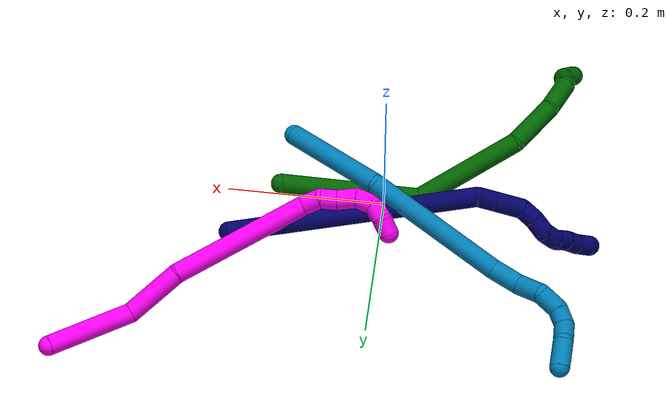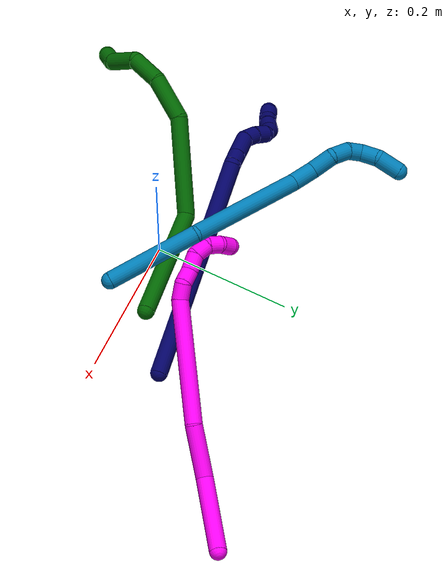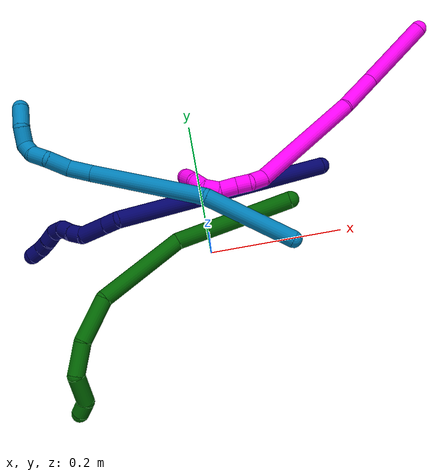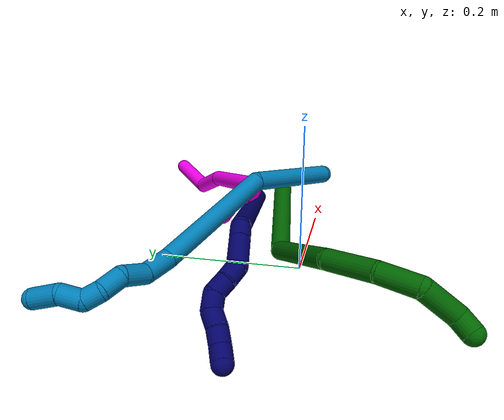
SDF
<sdf version="1.7">
 <world name="default">
  <model name="6">
   <static>0</static>
   <link name="6">
    <collision name="collision-cylinder-e_1_1_4">
     <pose>-0.010092 0.006536 0.087473 -0.074585 -0.114547 0.004278</pose>
     <geometry><cylinder><radius>0.0125</radius><length>0.176591</length></cylinder></geometry>
     <surface>
      <friction><ode><mu>1.16</mu><mu2>1.16</mu2><slip1>0</slip1><slip2>0</slip2></ode></friction>
      <contact><ode><kp>1e+06</kp><kd>1</kd><max_vel>0</max_vel><min_depth>0.001</min_depth></ode></contact>
     </surface>
    </collision>
    <visual name="visual-cylinder-e_1_1_4">
     <pose>-0.010092 0.006536 0.087473 -0.074585 -0.114547 0.004278</pose>
     <geometry><cylinder><radius>0.0125</radius><length>0.176591</length></cylinder></geometry>
     <material><ambient>0 0.392157 0.003922 1</ambient></material>
    </visual>
    <collision name="collision-cylinder-e_2_4_5">
     <pose>-0.036399 -0.024397 0.232658 0.575851 -0.231438 -0.068822</pose>
     <geometry><cylinder><radius>0.0125</radius><length>0.141388</length></cylinder></geometry>
     <surface>
      <friction><ode><mu>1.16</mu><mu2>1.16</mu2><slip1>0</slip1><slip2>0</slip2></ode></friction>
      <contact><ode><kp>1e+06</kp><kd>1</kd><max_vel>0</max_vel><min_depth>0.001</min_depth></ode></contact>
     </surface>
    </collision>
    <visual name="visual-cylinder-e_2_4_5">
     <pose>-0.036399 -0.024397 0.232658 0.575851 -0.231438 -0.068822</pose>
     <geometry><cylinder><radius>0.0125</radius><length>0.141388</length></cylinder></geometry>
     <material><ambient>0 0.392157 0.003922 1</ambient></material>
    </visual>
    <collision name="collision-cylinder-e_3_5_6">
     <pose>-0.073715 -0.077632 0.310485 0.664727 -0.690163 -0.24689</pose>
     <geometry><cylinder><radius>0.0125</radius><length>0.066284</length></cylinder></geometry>
     <surface>
      <friction><ode><mu>1.16</mu><mu2>1.16</mu2><slip1>0</slip1><slip2>0</slip2></ode></friction>
      <contact><ode><kp>1e+06</kp><kd>1</kd><max_vel>0</max_vel><min_depth>0.001</min_depth></ode></contact>
     </surface>
    </collision>
    <visual name="visual-cylinder-e_3_5_6">
     <pose>-0.073715 -0.077632 0.310485 0.664727 -0.690163 -0.24689</pose>
     <geometry><cylinder><radius>0.0125</radius><length>0.066284</length></cylinder></geometry>
     <material><ambient>0 0.392157 0.003922 1</ambient></material>
    </visual>
    <collision name="collision-cylinder-e_4_6_7">
     <pose>-0.114651 -0.100911 0.34056 0.646382 -1.00938 -0.365901</pose>
     <geometry><cylinder><radius>0.0125</radius><length>0.046865</length></cylinder></geometry>
     <surface>
      <friction><ode><mu>1.16</mu><mu2>1.16</mu2><slip1>0</slip1><slip2>0</slip2></ode></friction>
      <contact><ode><kp>1e+06</kp><kd>1</kd><max_vel>0</max_vel><min_depth>0.001</min_depth></ode></contact>
     </surface>
    </collision>
    <visual name="visual-cylinder-e_4_6_7">
     <pose>-0.114651 -0.100911 0.34056 0.646382 -1.00938 -0.365901</pose>
     <geometry><cylinder><radius>0.0125</radius><length>0.046865</length></cylinder></geometry>
     <material><ambient>0 0.392157 0.003922 1</ambient></material>
    </visual>
    <collision name="collision-cylinder-e_5_7_8">
     <pose>-0.157343 -0.103111 0.351178 -1.44728 -1.34071 1.22211</pose>
     <geometry><cylinder><radius>0.0125</radius><length>0.046951</length></cylinder></geometry>
     <surface>
      <friction><ode><mu>1.16</mu><mu2>1.16</mu2><slip1>0</slip1><slip2>0</slip2></ode></friction>
      <contact><ode><kp>1e+06</kp><kd>1</kd><max_vel>0</max_vel><min_depth>0.001</min_depth></ode></contact>
     </surface>
    </collision>
    <visual name="visual-cylinder-e_5_7_8">
     <pose>-0.157343 -0.103111 0.351178 -1.44728 -1.34071 1.22211</pose>
     <geometry><cylinder><radius>0.0125</radius><length>0.046951</length></cylinder></geometry>
     <material><ambient>0 0.392157 0.003922 1</ambient></material>
    </visual>
    <collision name="collision-cylinder-e_6_8_2">
     <pose>-0.188564 -0.095983 0.358685 -0.259077 -0.868057 0.120614</pose>
     <geometry><cylinder><radius>0.0125</radius><length>0.021922</length></cylinder></geometry>
     <surface>
      <friction><ode><mu>1.16</mu><mu2>1.16</mu2><slip1>0</slip1><slip2>0</slip2></ode></friction>
      <contact><ode><kp>1e+06</kp><kd>1</kd><max_vel>0</max_vel><min_depth>0.001</min_depth></ode></contact>
     </surface>
    </collision>
    <visual name="visual-cylinder-e_6_8_2">
     <pose>-0.188564 -0.095983 0.358685 -0.259077 -0.868057 0.120614</pose>
     <geometry><cylinder><radius>0.0125</radius><length>0.021922</length></cylinder></geometry>
     <material><ambient>0 0.392157 0.003922 1</ambient></material>
    </visual>
    <collision name="collision-sphere-2">
     <pose>-0.196928 -0.094168 0.365533 0 -0 0</pose>
     <geometry><sphere><radius>0.0125</radius></sphere></geometry>
     <surface>
      <friction><ode><mu>1.16</mu><mu2>1.16</mu2><slip1>0</slip1><slip2>0</slip2></ode></friction>
      <contact><ode><kp>1e+06</kp><kd>1</kd><max_vel>0</max_vel><min_depth>0.001</min_depth></ode></contact>
     </surface>
    </collision>
    <visual name="visual-sphere-2">
     <pose>-0.196928 -0.094168 0.365533 0 -0 0</pose>
     <geometry><sphere><radius>0.0125</radius></sphere></geometry>
     <material><ambient>0 0.392157 0.003922 1</ambient></material>
    </visual>
    <collision name="collision-sphere-4">
     <pose>-0.020184 0.013073 0.174946 0 -0 0</pose>
     <geometry><sphere><radius>0.0125</radius></sphere></geometry>
     <surface>
      <friction><ode><mu>1.16</mu><mu2>1.16</mu2><slip1>0</slip1><slip2>0</slip2></ode></friction>
      <contact><ode><kp>1e+06</kp><kd>1</kd><max_vel>0</max_vel><min_depth>0.001</min_depth></ode></contact>
     </surface>
    </collision>
    <visual name="visual-sphere-4">
     <pose>-0.020184 0.013073 0.174946 0 -0 0</pose>
     <geometry><sphere><radius>0.0125</radius></sphere></geometry>
     <material><ambient>0 0.392157 0.003922 1</ambient></material>
    </visual>
    <collision name="collision-sphere-1">
     <geometry><sphere><radius>0.0125</radius></sphere></geometry>
     <surface>
      <friction><ode><mu>1.16</mu><mu2>1.16</mu2><slip1>0</slip1><slip2>0</slip2></ode></friction>
      <contact><ode><kp>1e+06</kp><kd>1</kd><max_vel>0</max_vel><min_depth>0.001</min_depth></ode></contact>
     </surface>
    </collision>
    <visual name="visual-sphere-1">
     <geometry><sphere><radius>0.0125</radius></sphere></geometry>
     <material><ambient>0 0.392157 0.003922 1</ambient></material>
    </visual>
    <collision name="collision-sphere-8">
     <pose>-0.1802 -0.097798 0.351837 0 -0 0</pose>
     <geometry><sphere><radius>0.0125</radius></sphere></geometry>
     <surface>
      <friction><ode><mu>1.16</mu><mu2>1.16</mu2><slip1>0</slip1><slip2>0</slip2></ode></friction>
      <contact><ode><kp>1e+06</kp><kd>1</kd><max_vel>0</max_vel><min_depth>0.001</min_depth></ode></contact>
     </surface>
    </collision>
    <visual name="visual-sphere-8">
     <pose>-0.1802 -0.097798 0.351837 0 -0 0</pose>
     <geometry><sphere><radius>0.0125</radius></sphere></geometry>
     <material><ambient>0 0.392157 0.003922 1</ambient></material>
    </visual>
    <collision name="collision-sphere-5">
     <pose>-0.052615 -0.061867 0.29037 0 -0 0</pose>
     <geometry><sphere><radius>0.0125</radius></sphere></geometry>
     <surface>
      <friction><ode><mu>1.16</mu><mu2>1.16</mu2><slip1>0</slip1><slip2>0</slip2></ode></friction>
      <contact><ode><kp>1e+06</kp><kd>1</kd><max_vel>0</max_vel><min_depth>0.001</min_depth></ode></contact>
     </surface>
    </collision>
    <visual name="visual-sphere-5">
     <pose>-0.052615 -0.061867 0.29037 0 -0 0</pose>
     <geometry><sphere><radius>0.0125</radius></sphere></geometry>
     <material><ambient>0 0.392157 0.003922 1</ambient></material>
    </visual>
    <collision name="collision-sphere-6">
     <pose>-0.094816 -0.093397 0.330601 0 -0 0</pose>
     <geometry><sphere><radius>0.0125</radius></sphere></geometry>
     <surface>
      <friction><ode><mu>1.16</mu><mu2>1.16</mu2><slip1>0</slip1><slip2>0</slip2></ode></friction>
      <contact><ode><kp>1e+06</kp><kd>1</kd><max_vel>0</max_vel><min_depth>0.001</min_depth></ode></contact>
     </surface>
    </collision>
    <visual name="visual-sphere-6">
     <pose>-0.094816 -0.093397 0.330601 0 -0 0</pose>
     <geometry><sphere><radius>0.0125</radius></sphere></geometry>
     <material><ambient>0 0.392157 0.003922 1</ambient></material>
    </visual>
    <collision name="collision-sphere-7">
     <pose>-0.134487 -0.108424 0.350518 0 -0 0</pose>
     <geometry><sphere><radius>0.0125</radius></sphere></geometry>
     <surface>
      <friction><ode><mu>1.16</mu><mu2>1.16</mu2><slip1>0</slip1><slip2>0</slip2></ode></friction>
      <contact><ode><kp>1e+06</kp><kd>1</kd><max_vel>0</max_vel><min_depth>0.001</min_depth></ode></contact>
     </surface>
    </collision>
    <visual name="visual-sphere-7">
     <pose>-0.134487 -0.108424 0.350518 0 -0 0</pose>
     <geometry><sphere><radius>0.0125</radius></sphere></geometry>
     <material><ambient>0 0.392157 0.003922 1</ambient></material>
    </visual>
    <inertial>
     <pose>-0.057418 -0.038231 0.218467 0 -0 0</pose>
     <mass>0.5</mass>
     <inertia>
      <ixx>0.00069</ixx>
      <ixy>0</ixy>
      <ixz>0</ixz>
      <iyy>0.000686</iyy>
      <iyz>0</iyz>
      <izz>0.000281</izz>
     </inertia>
    </inertial>
   </link>
   <pose>0.12565 0.045323 0.078914 -1.65555 -0.42918 1.67783</pose>
  </model>
  <model name="7">
   <static>0</static>
   <link name="7">
    <collision name="collision-cylinder-e_1_1_4">
     <pose>-0.088791 -0.063098 -0.11539 2.64119 -0.593845 -1.74987</pose>
     <geometry><cylinder><radius>0.0125</radius><length>0.317366</length></cylinder></geometry>
     <surface>
      <friction><ode><mu>1.16</mu><mu2>1.16</mu2><slip1>0</slip1><slip2>0</slip2></ode></friction>
      <contact><ode><kp>1e+06</kp><kd>1</kd><max_vel>0</max_vel><min_depth>0.001</min_depth></ode></contact>
     </surface>
    </collision>
    <visual name="visual-cylinder-e_1_1_4">
     <pose>-0.088791 -0.063098 -0.11539 2.64119 -0.593845 -1.74987</pose>
     <geometry><cylinder><radius>0.0125</radius><length>0.317366</length></cylinder></geometry>
     <material><ambient>0.003922 0 0.403922 1</ambient></material>
    </visual>
    <collision name="collision-cylinder-e_2_4_5">
     <pose>-0.181351 -0.12437 -0.240644 -2.95848 -0.359352 2.20556</pose>
     <geometry><cylinder><radius>0.0125</radius><length>0.021431</length></cylinder></geometry>
     <surface>
      <friction><ode><mu>1.16</mu><mu2>1.16</mu2><slip1>0</slip1><slip2>0</slip2></ode></friction>
      <contact><ode><kp>1e+06</kp><kd>1</kd><max_vel>0</max_vel><min_depth>0.001</min_depth></ode></contact>
     </surface>
    </collision>
    <visual name="visual-cylinder-e_2_4_5">
     <pose>-0.181351 -0.12437 -0.240644 -2.95848 -0.359352 2.20556</pose>
     <geometry><cylinder><radius>0.0125</radius><length>0.021431</length></cylinder></geometry>
     <material><ambient>0.003922 0 0.403922 1</ambient></material>
    </visual>
    <collision name="collision-cylinder-e_3_5_6">
     <pose>-0.192231 -0.119092 -0.269009 -2.95717 -0.361284 2.20419</pose>
     <geometry><cylinder><radius>0.0125</radius><length>0.040239</length></cylinder></geometry>
     <surface>
      <friction><ode><mu>1.16</mu><mu2>1.16</mu2><slip1>0</slip1><slip2>0</slip2></ode></friction>
      <contact><ode><kp>1e+06</kp><kd>1</kd><max_vel>0</max_vel><min_depth>0.001</min_depth></ode></contact>
     </surface>
    </collision>
    <visual name="visual-cylinder-e_3_5_6">
     <pose>-0.192231 -0.119092 -0.269009 -2.95717 -0.361284 2.20419</pose>
     <geometry><cylinder><radius>0.0125</radius><length>0.040239</length></cylinder></geometry>
     <material><ambient>0.003922 0 0.403922 1</ambient></material>
    </visual>
    <collision name="collision-cylinder-e_4_6_7">
     <pose>-0.20633 -0.111252 -0.293492 -2.50856 -0.755428 1.7614</pose>
     <geometry><cylinder><radius>0.0125</radius><length>0.020383</length></cylinder></geometry>
     <surface>
      <friction><ode><mu>1.16</mu><mu2>1.16</mu2><slip1>0</slip1><slip2>0</slip2></ode></friction>
      <contact><ode><kp>1e+06</kp><kd>1</kd><max_vel>0</max_vel><min_depth>0.001</min_depth></ode></contact>
     </surface>
    </collision>
    <visual name="visual-cylinder-e_4_6_7">
     <pose>-0.20633 -0.111252 -0.293492 -2.50856 -0.755428 1.7614</pose>
     <geometry><cylinder><radius>0.0125</radius><length>0.020383</length></cylinder></geometry>
     <material><ambient>0.003922 0 0.403922 1</ambient></material>
    </visual>
    <collision name="collision-cylinder-e_5_7_8">
     <pose>-0.220092 -0.100926 -0.304086 -2.23133 -0.733423 1.33082</pose>
     <geometry><cylinder><radius>0.0125</radius><length>0.020241</length></cylinder></geometry>
     <surface>
      <friction><ode><mu>1.16</mu><mu2>1.16</mu2><slip1>0</slip1><slip2>0</slip2></ode></friction>
      <contact><ode><kp>1e+06</kp><kd>1</kd><max_vel>0</max_vel><min_depth>0.001</min_depth></ode></contact>
     </surface>
    </collision>
    <visual name="visual-cylinder-e_5_7_8">
     <pose>-0.220092 -0.100926 -0.304086 -2.23133 -0.733423 1.33082</pose>
     <geometry><cylinder><radius>0.0125</radius><length>0.020241</length></cylinder></geometry>
     <material><ambient>0.003922 0 0.403922 1</ambient></material>
    </visual>
    <collision name="collision-cylinder-e_6_8_9">
     <pose>-0.229367 -0.090093 -0.317095 -2.61373 -0.251842 0.876172</pose>
     <geometry><cylinder><radius>0.0125</radius><length>0.020072</length></cylinder></geometry>
     <surface>
      <friction><ode><mu>1.16</mu><mu2>1.16</mu2><slip1>0</slip1><slip2>0</slip2></ode></friction>
      <contact><ode><kp>1e+06</kp><kd>1</kd><max_vel>0</max_vel><min_depth>0.001</min_depth></ode></contact>
     </surface>
    </collision>
    <visual name="visual-cylinder-e_6_8_9">
     <pose>-0.229367 -0.090093 -0.317095 -2.61373 -0.251842 0.876172</pose>
     <geometry><cylinder><radius>0.0125</radius><length>0.020072</length></cylinder></geometry>
     <material><ambient>0.003922 0 0.403922 1</ambient></material>
    </visual>
    <collision name="collision-cylinder-e_7_9_10">
     <pose>-0.231055 -0.083191 -0.335353 -2.94084 0.080568 -0.761347</pose>
     <geometry><cylinder><radius>0.0125</radius><length>0.020193</length></cylinder></geometry>
     <surface>
      <friction><ode><mu>1.16</mu><mu2>1.16</mu2><slip1>0</slip1><slip2>0</slip2></ode></friction>
      <contact><ode><kp>1e+06</kp><kd>1</kd><max_vel>0</max_vel><min_depth>0.001</min_depth></ode></contact>
     </surface>
    </collision>
    <visual name="visual-cylinder-e_7_9_10">
     <pose>-0.231055 -0.083191 -0.335353 -2.94084 0.080568 -0.761347</pose>
     <geometry><cylinder><radius>0.0125</radius><length>0.020193</length></cylinder></geometry>
     <material><ambient>0.003922 0 0.403922 1</ambient></material>
    </visual>
    <collision name="collision-cylinder-e_8_10_11">
     <pose>-0.23013 -0.077547 -0.354534 -2.76949 0.011303 -0.060034</pose>
     <geometry><cylinder><radius>0.0125</radius><length>0.020009</length></cylinder></geometry>
     <surface>
      <friction><ode><mu>1.16</mu><mu2>1.16</mu2><slip1>0</slip1><slip2>0</slip2></ode></friction>
      <contact><ode><kp>1e+06</kp><kd>1</kd><max_vel>0</max_vel><min_depth>0.001</min_depth></ode></contact>
     </surface>
    </collision>
    <visual name="visual-cylinder-e_8_10_11">
     <pose>-0.23013 -0.077547 -0.354534 -2.76949 0.011303 -0.060034</pose>
     <geometry><cylinder><radius>0.0125</radius><length>0.020009</length></cylinder></geometry>
     <material><ambient>0.003922 0 0.403922 1</ambient></material>
    </visual>
    <collision name="collision-cylinder-e_9_11_2">
     <pose>-0.231616 -0.07245 -0.373651 -2.99365 -0.160095 1.64998</pose>
     <geometry><cylinder><radius>0.0125</radius><length>0.020068</length></cylinder></geometry>
     <surface>
      <friction><ode><mu>1.16</mu><mu2>1.16</mu2><slip1>0</slip1><slip2>0</slip2></ode></friction>
      <contact><ode><kp>1e+06</kp><kd>1</kd><max_vel>0</max_vel><min_depth>0.001</min_depth></ode></contact>
     </surface>
    </collision>
    <visual name="visual-cylinder-e_9_11_2">
     <pose>-0.231616 -0.07245 -0.373651 -2.99365 -0.160095 1.64998</pose>
     <geometry><cylinder><radius>0.0125</radius><length>0.020068</length></cylinder></geometry>
     <material><ambient>0.003922 0 0.403922 1</ambient></material>
    </visual>
    <collision name="collision-sphere-2">
     <pose>-0.233216 -0.07099 -0.383448 0 -0 0</pose>
     <geometry><sphere><radius>0.0125</radius></sphere></geometry>
     <surface>
      <friction><ode><mu>1.16</mu><mu2>1.16</mu2><slip1>0</slip1><slip2>0</slip2></ode></friction>
      <contact><ode><kp>1e+06</kp><kd>1</kd><max_vel>0</max_vel><min_depth>0.001</min_depth></ode></contact>
     </surface>
    </collision>
    <visual name="visual-sphere-2">
     <pose>-0.233216 -0.07099 -0.383448 0 -0 0</pose>
     <geometry><sphere><radius>0.0125</radius></sphere></geometry>
     <material><ambient>0.003922 0 0.403922 1</ambient></material>
    </visual>
    <collision name="collision-sphere-11">
     <pose>-0.230017 -0.07391 -0.363853 0 -0 0</pose>
     <geometry><sphere><radius>0.0125</radius></sphere></geometry>
     <surface>
      <friction><ode><mu>1.16</mu><mu2>1.16</mu2><slip1>0</slip1><slip2>0</slip2></ode></friction>
      <contact><ode><kp>1e+06</kp><kd>1</kd><max_vel>0</max_vel><min_depth>0.001</min_depth></ode></contact>
     </surface>
    </collision>
    <visual name="visual-sphere-11">
     <pose>-0.230017 -0.07391 -0.363853 0 -0 0</pose>
     <geometry><sphere><radius>0.0125</radius></sphere></geometry>
     <material><ambient>0.003922 0 0.403922 1</ambient></material>
    </visual>
    <collision name="collision-sphere-10">
     <pose>-0.230243 -0.081184 -0.345215 0 -0 0</pose>
     <geometry><sphere><radius>0.0125</radius></sphere></geometry>
     <surface>
      <friction><ode><mu>1.16</mu><mu2>1.16</mu2><slip1>0</slip1><slip2>0</slip2></ode></friction>
      <contact><ode><kp>1e+06</kp><kd>1</kd><max_vel>0</max_vel><min_depth>0.001</min_depth></ode></contact>
     </surface>
    </collision>
    <visual name="visual-sphere-10">
     <pose>-0.230243 -0.081184 -0.345215 0 -0 0</pose>
     <geometry><sphere><radius>0.0125</radius></sphere></geometry>
     <material><ambient>0.003922 0 0.403922 1</ambient></material>
    </visual>
    <collision name="collision-sphere-9">
     <pose>-0.231868 -0.085198 -0.325492 0 -0 0</pose>
     <geometry><sphere><radius>0.0125</radius></sphere></geometry>
     <surface>
      <friction><ode><mu>1.16</mu><mu2>1.16</mu2><slip1>0</slip1><slip2>0</slip2></ode></friction>
      <contact><ode><kp>1e+06</kp><kd>1</kd><max_vel>0</max_vel><min_depth>0.001</min_depth></ode></contact>
     </surface>
    </collision>
    <visual name="visual-sphere-9">
     <pose>-0.231868 -0.085198 -0.325492 0 -0 0</pose>
     <geometry><sphere><radius>0.0125</radius></sphere></geometry>
     <material><ambient>0.003922 0 0.403922 1</ambient></material>
    </visual>
    <collision name="collision-sphere-4">
     <pose>-0.177582 -0.126196 -0.230781 0 -0 0</pose>
     <geometry><sphere><radius>0.0125</radius></sphere></geometry>
     <surface>
      <friction><ode><mu>1.16</mu><mu2>1.16</mu2><slip1>0</slip1><slip2>0</slip2></ode></friction>
      <contact><ode><kp>1e+06</kp><kd>1</kd><max_vel>0</max_vel><min_depth>0.001</min_depth></ode></contact>
     </surface>
    </collision>
    <visual name="visual-sphere-4">
     <pose>-0.177582 -0.126196 -0.230781 0 -0 0</pose>
     <geometry><sphere><radius>0.0125</radius></sphere></geometry>
     <material><ambient>0.003922 0 0.403922 1</ambient></material>
    </visual>
    <collision name="collision-sphere-1">
     <geometry><sphere><radius>0.0125</radius></sphere></geometry>
     <surface>
      <friction><ode><mu>1.16</mu><mu2>1.16</mu2><slip1>0</slip1><slip2>0</slip2></ode></friction>
      <contact><ode><kp>1e+06</kp><kd>1</kd><max_vel>0</max_vel><min_depth>0.001</min_depth></ode></contact>
     </surface>
    </collision>
    <visual name="visual-sphere-1">
     <geometry><sphere><radius>0.0125</radius></sphere></geometry>
     <material><ambient>0.003922 0 0.403922 1</ambient></material>
    </visual>
    <collision name="collision-sphere-8">
     <pose>-0.226866 -0.094989 -0.308699 0 -0 0</pose>
     <geometry><sphere><radius>0.0125</radius></sphere></geometry>
     <surface>
      <friction><ode><mu>1.16</mu><mu2>1.16</mu2><slip1>0</slip1><slip2>0</slip2></ode></friction>
      <contact><ode><kp>1e+06</kp><kd>1</kd><max_vel>0</max_vel><min_depth>0.001</min_depth></ode></contact>
     </surface>
    </collision>
    <visual name="visual-sphere-8">
     <pose>-0.226866 -0.094989 -0.308699 0 -0 0</pose>
     <geometry><sphere><radius>0.0125</radius></sphere></geometry>
     <material><ambient>0.003922 0 0.403922 1</ambient></material>
    </visual>
    <collision name="collision-sphere-5">
     <pose>-0.185119 -0.122543 -0.250508 0 -0 0</pose>
     <geometry><sphere><radius>0.0125</radius></sphere></geometry>
     <surface>
      <friction><ode><mu>1.16</mu><mu2>1.16</mu2><slip1>0</slip1><slip2>0</slip2></ode></friction>
      <contact><ode><kp>1e+06</kp><kd>1</kd><max_vel>0</max_vel><min_depth>0.001</min_depth></ode></contact>
     </surface>
    </collision>
    <visual name="visual-sphere-5">
     <pose>-0.185119 -0.122543 -0.250508 0 -0 0</pose>
     <geometry><sphere><radius>0.0125</radius></sphere></geometry>
     <material><ambient>0.003922 0 0.403922 1</ambient></material>
    </visual>
    <collision name="collision-sphere-6">
     <pose>-0.199343 -0.115641 -0.28751 0 -0 0</pose>
     <geometry><sphere><radius>0.0125</radius></sphere></geometry>
     <surface>
      <friction><ode><mu>1.16</mu><mu2>1.16</mu2><slip1>0</slip1><slip2>0</slip2></ode></friction>
      <contact><ode><kp>1e+06</kp><kd>1</kd><max_vel>0</max_vel><min_depth>0.001</min_depth></ode></contact>
     </surface>
    </collision>
    <visual name="visual-sphere-6">
     <pose>-0.199343 -0.115641 -0.28751 0 -0 0</pose>
     <geometry><sphere><radius>0.0125</radius></sphere></geometry>
     <material><ambient>0.003922 0 0.403922 1</ambient></material>
    </visual>
    <collision name="collision-sphere-7">
     <pose>-0.213317 -0.106863 -0.299473 0 -0 0</pose>
     <geometry><sphere><radius>0.0125</radius></sphere></geometry>
     <surface>
      <friction><ode><mu>1.16</mu><mu2>1.16</mu2><slip1>0</slip1><slip2>0</slip2></ode></friction>
      <contact><ode><kp>1e+06</kp><kd>1</kd><max_vel>0</max_vel><min_depth>0.001</min_depth></ode></contact>
     </surface>
    </collision>
    <visual name="visual-sphere-7">
     <pose>-0.213317 -0.106863 -0.299473 0 -0 0</pose>
     <geometry><sphere><radius>0.0125</radius></sphere></geometry>
     <material><ambient>0.003922 0 0.403922 1</ambient></material>
    </visual>
    <inertial>
     <pose>-0.133967 -0.076574 -0.184937 0 -0 0</pose>
     <mass>0.5</mass>
     <inertia>
      <ixx>-0.002587</ixx>
      <ixy>0</ixy>
      <ixz>0</ixz>
      <iyy>-0.001049</iyy>
      <iyz>0</iyz>
      <izz>0.002532</izz>
     </inertia>
    </inertial>
   </link>
   <pose>0.185334 0.095638 0.035634 -1.16943 0.251586 -0.877839</pose>
  </model>
  <model name="9">
   <static>0</static>
   <link name="9">
    <collision name="collision-cylinder-e_1_1_4">
     <pose>-0.06839 0.002983 0.002922 -0.795746 -1.50981 0.753082</pose>
     <geometry><cylinder><radius>0.0125</radius><length>0.137034</length></cylinder></geometry>
     <surface>
      <friction><ode><mu>1.16</mu><mu2>1.16</mu2><slip1>0</slip1><slip2>0</slip2></ode></friction>
      <contact><ode><kp>1e+06</kp><kd>1</kd><max_vel>0</max_vel><min_depth>0.001</min_depth></ode></contact>
     </surface>
    </collision>
    <visual name="visual-cylinder-e_1_1_4">
     <pose>-0.06839 0.002983 0.002922 -0.795746 -1.50981 0.753082</pose>
     <geometry><cylinder><radius>0.0125</radius><length>0.137034</length></cylinder></geometry>
     <material><ambient>0 0.490196 0.709804 1</ambient></material>
    </visual>
    <collision name="collision-cylinder-e_2_4_5">
     <pose>-0.215377 0.024449 0.045948 -0.43185 -1.05892 0.255322</pose>
     <geometry><cylinder><radius>0.0125</radius><length>0.180305</length></cylinder></geometry>
     <surface>
      <friction><ode><mu>1.16</mu><mu2>1.16</mu2><slip1>0</slip1><slip2>0</slip2></ode></friction>
      <contact><ode><kp>1e+06</kp><kd>1</kd><max_vel>0</max_vel><min_depth>0.001</min_depth></ode></contact>
     </surface>
    </collision>
    <visual name="visual-cylinder-e_2_4_5">
     <pose>-0.215377 0.024449 0.045948 -0.43185 -1.05892 0.255322</pose>
     <geometry><cylinder><radius>0.0125</radius><length>0.180305</length></cylinder></geometry>
     <material><ambient>0 0.490196 0.709804 1</ambient></material>
    </visual>
    <collision name="collision-cylinder-e_3_5_6">
     <pose>-0.311213 0.047005 0.09181 -0.615747 -1.18238 0.4206</pose>
     <geometry><cylinder><radius>0.0125</radius><length>0.037252</length></cylinder></geometry>
     <surface>
      <friction><ode><mu>1.16</mu><mu2>1.16</mu2><slip1>0</slip1><slip2>0</slip2></ode></friction>
      <contact><ode><kp>1e+06</kp><kd>1</kd><max_vel>0</max_vel><min_depth>0.001</min_depth></ode></contact>
     </surface>
    </collision>
    <visual name="visual-cylinder-e_3_5_6">
     <pose>-0.311213 0.047005 0.09181 -0.615747 -1.18238 0.4206</pose>
     <geometry><cylinder><radius>0.0125</radius><length>0.037252</length></cylinder></geometry>
     <material><ambient>0 0.490196 0.709804 1</ambient></material>
    </visual>
    <collision name="collision-cylinder-e_4_6_7">
     <pose>-0.345232 0.053014 0.096099 -2.22081 -1.42701 2.10106</pose>
     <geometry><cylinder><radius>0.0125</radius><length>0.033911</length></cylinder></geometry>
     <surface>
      <friction><ode><mu>1.16</mu><mu2>1.16</mu2><slip1>0</slip1><slip2>0</slip2></ode></friction>
      <contact><ode><kp>1e+06</kp><kd>1</kd><max_vel>0</max_vel><min_depth>0.001</min_depth></ode></contact>
     </surface>
    </collision>
    <visual name="visual-cylinder-e_4_6_7">
     <pose>-0.345232 0.053014 0.096099 -2.22081 -1.42701 2.10106</pose>
     <geometry><cylinder><radius>0.0125</radius><length>0.033911</length></cylinder></geometry>
     <material><ambient>0 0.490196 0.709804 1</ambient></material>
    </visual>
    <collision name="collision-cylinder-e_5_7_8">
     <pose>-0.374329 0.056132 0.101054 -0.182254 -1.08305 0.109821</pose>
     <geometry><cylinder><radius>0.0125</radius><length>0.027885</length></cylinder></geometry>
     <surface>
      <friction><ode><mu>1.16</mu><mu2>1.16</mu2><slip1>0</slip1><slip2>0</slip2></ode></friction>
      <contact><ode><kp>1e+06</kp><kd>1</kd><max_vel>0</max_vel><min_depth>0.001</min_depth></ode></contact>
     </surface>
    </collision>
    <visual name="visual-cylinder-e_5_7_8">
     <pose>-0.374329 0.056132 0.101054 -0.182254 -1.08305 0.109821</pose>
     <geometry><cylinder><radius>0.0125</radius><length>0.027885</length></cylinder></geometry>
     <material><ambient>0 0.490196 0.709804 1</ambient></material>
    </visual>
    <collision name="collision-cylinder-e_6_8_9">
     <pose>-0.394887 0.053703 0.113229 0.561122 -0.881627 -0.270238</pose>
     <geometry><cylinder><radius>0.0125</radius><length>0.021357</length></cylinder></geometry>
     <surface>
      <friction><ode><mu>1.16</mu><mu2>1.16</mu2><slip1>0</slip1><slip2>0</slip2></ode></friction>
      <contact><ode><kp>1e+06</kp><kd>1</kd><max_vel>0</max_vel><min_depth>0.001</min_depth></ode></contact>
     </surface>
    </collision>
    <visual name="visual-cylinder-e_6_8_9">
     <pose>-0.394887 0.053703 0.113229 0.561122 -0.881627 -0.270238</pose>
     <geometry><cylinder><radius>0.0125</radius><length>0.021357</length></cylinder></geometry>
     <material><ambient>0 0.490196 0.709804 1</ambient></material>
    </visual>
    <collision name="collision-cylinder-e_7_9_10">
     <pose>-0.412023 0.039645 0.117945 1.66935 -0.703001 -0.769236</pose>
     <geometry><cylinder><radius>0.0125</radius><length>0.027515</length></cylinder></geometry>
     <surface>
      <friction><ode><mu>1.16</mu><mu2>1.16</mu2><slip1>0</slip1><slip2>0</slip2></ode></friction>
      <contact><ode><kp>1e+06</kp><kd>1</kd><max_vel>0</max_vel><min_depth>0.001</min_depth></ode></contact>
     </surface>
    </collision>
    <visual name="visual-cylinder-e_7_9_10">
     <pose>-0.412023 0.039645 0.117945 1.66935 -0.703001 -0.769236</pose>
     <geometry><cylinder><radius>0.0125</radius><length>0.027515</length></cylinder></geometry>
     <material><ambient>0 0.490196 0.709804 1</ambient></material>
    </visual>
    <collision name="collision-cylinder-e_8_10_2">
     <pose>-0.429656 0.015725 0.123531 1.11427 -0.527131 -0.333094</pose>
     <geometry><cylinder><radius>0.0125</radius><length>0.034741</length></cylinder></geometry>
     <surface>
      <friction><ode><mu>1.16</mu><mu2>1.16</mu2><slip1>0</slip1><slip2>0</slip2></ode></friction>
      <contact><ode><kp>1e+06</kp><kd>1</kd><max_vel>0</max_vel><min_depth>0.001</min_depth></ode></contact>
     </surface>
    </collision>
    <visual name="visual-cylinder-e_8_10_2">
     <pose>-0.429656 0.015725 0.123531 1.11427 -0.527131 -0.333094</pose>
     <geometry><cylinder><radius>0.0125</radius><length>0.034741</length></cylinder></geometry>
     <material><ambient>0 0.490196 0.709804 1</ambient></material>
    </visual>
    <collision name="collision-sphere-2">
     <pose>-0.438394 0.00225 0.130149 0 -0 0</pose>
     <geometry><sphere><radius>0.0125</radius></sphere></geometry>
     <surface>
      <friction><ode><mu>1.16</mu><mu2>1.16</mu2><slip1>0</slip1><slip2>0</slip2></ode></friction>
      <contact><ode><kp>1e+06</kp><kd>1</kd><max_vel>0</max_vel><min_depth>0.001</min_depth></ode></contact>
     </surface>
    </collision>
    <visual name="visual-sphere-2">
     <pose>-0.438394 0.00225 0.130149 0 -0 0</pose>
     <geometry><sphere><radius>0.0125</radius></sphere></geometry>
     <material><ambient>0 0.490196 0.709804 1</ambient></material>
    </visual>
    <collision name="collision-sphere-10">
     <pose>-0.420917 0.0292 0.116913 0 -0 0</pose>
     <geometry><sphere><radius>0.0125</radius></sphere></geometry>
     <surface>
      <friction><ode><mu>1.16</mu><mu2>1.16</mu2><slip1>0</slip1><slip2>0</slip2></ode></friction>
      <contact><ode><kp>1e+06</kp><kd>1</kd><max_vel>0</max_vel><min_depth>0.001</min_depth></ode></contact>
     </surface>
    </collision>
    <visual name="visual-sphere-10">
     <pose>-0.420917 0.0292 0.116913 0 -0 0</pose>
     <geometry><sphere><radius>0.0125</radius></sphere></geometry>
     <material><ambient>0 0.490196 0.709804 1</ambient></material>
    </visual>
    <collision name="collision-sphere-9">
     <pose>-0.403129 0.050089 0.118978 0 -0 0</pose>
     <geometry><sphere><radius>0.0125</radius></sphere></geometry>
     <surface>
      <friction><ode><mu>1.16</mu><mu2>1.16</mu2><slip1>0</slip1><slip2>0</slip2></ode></friction>
      <contact><ode><kp>1e+06</kp><kd>1</kd><max_vel>0</max_vel><min_depth>0.001</min_depth></ode></contact>
     </surface>
    </collision>
    <visual name="visual-sphere-9">
     <pose>-0.403129 0.050089 0.118978 0 -0 0</pose>
     <geometry><sphere><radius>0.0125</radius></sphere></geometry>
     <material><ambient>0 0.490196 0.709804 1</ambient></material>
    </visual>
    <collision name="collision-sphere-4">
     <pose>-0.136779 0.005966 0.005844 0 -0 0</pose>
     <geometry><sphere><radius>0.0125</radius></sphere></geometry>
     <surface>
      <friction><ode><mu>1.16</mu><mu2>1.16</mu2><slip1>0</slip1><slip2>0</slip2></ode></friction>
      <contact><ode><kp>1e+06</kp><kd>1</kd><max_vel>0</max_vel><min_depth>0.001</min_depth></ode></contact>
     </surface>
    </collision>
    <visual name="visual-sphere-4">
     <pose>-0.136779 0.005966 0.005844 0 -0 0</pose>
     <geometry><sphere><radius>0.0125</radius></sphere></geometry>
     <material><ambient>0 0.490196 0.709804 1</ambient></material>
    </visual>
    <collision name="collision-sphere-1">
     <geometry><sphere><radius>0.0125</radius></sphere></geometry>
     <surface>
      <friction><ode><mu>1.16</mu><mu2>1.16</mu2><slip1>0</slip1><slip2>0</slip2></ode></friction>
      <contact><ode><kp>1e+06</kp><kd>1</kd><max_vel>0</max_vel><min_depth>0.001</min_depth></ode></contact>
     </surface>
    </collision>
    <visual name="visual-sphere-1">
     <geometry><sphere><radius>0.0125</radius></sphere></geometry>
     <material><ambient>0 0.490196 0.709804 1</ambient></material>
    </visual>
    <collision name="collision-sphere-8">
     <pose>-0.386646 0.057316 0.10748 0 -0 0</pose>
     <geometry><sphere><radius>0.0125</radius></sphere></geometry>
     <surface>
      <friction><ode><mu>1.16</mu><mu2>1.16</mu2><slip1>0</slip1><slip2>0</slip2></ode></friction>
      <contact><ode><kp>1e+06</kp><kd>1</kd><max_vel>0</max_vel><min_depth>0.001</min_depth></ode></contact>
     </surface>
    </collision>
    <visual name="visual-sphere-8">
     <pose>-0.386646 0.057316 0.10748 0 -0 0</pose>
     <geometry><sphere><radius>0.0125</radius></sphere></geometry>
     <material><ambient>0 0.490196 0.709804 1</ambient></material>
    </visual>
    <collision name="collision-sphere-5">
     <pose>-0.293974 0.042931 0.086052 0 -0 0</pose>
     <geometry><sphere><radius>0.0125</radius></sphere></geometry>
     <surface>
      <friction><ode><mu>1.16</mu><mu2>1.16</mu2><slip1>0</slip1><slip2>0</slip2></ode></friction>
      <contact><ode><kp>1e+06</kp><kd>1</kd><max_vel>0</max_vel><min_depth>0.001</min_depth></ode></contact>
     </surface>
    </collision>
    <visual name="visual-sphere-5">
     <pose>-0.293974 0.042931 0.086052 0 -0 0</pose>
     <geometry><sphere><radius>0.0125</radius></sphere></geometry>
     <material><ambient>0 0.490196 0.709804 1</ambient></material>
    </visual>
    <collision name="collision-sphere-6">
     <pose>-0.328451 0.05108 0.097569 0 -0 0</pose>
     <geometry><sphere><radius>0.0125</radius></sphere></geometry>
     <surface>
      <friction><ode><mu>1.16</mu><mu2>1.16</mu2><slip1>0</slip1><slip2>0</slip2></ode></friction>
      <contact><ode><kp>1e+06</kp><kd>1</kd><max_vel>0</max_vel><min_depth>0.001</min_depth></ode></contact>
     </surface>
    </collision>
    <visual name="visual-sphere-6">
     <pose>-0.328451 0.05108 0.097569 0 -0 0</pose>
     <geometry><sphere><radius>0.0125</radius></sphere></geometry>
     <material><ambient>0 0.490196 0.709804 1</ambient></material>
    </visual>
    <collision name="collision-sphere-7">
     <pose>-0.362012 0.054948 0.094628 0 -0 0</pose>
     <geometry><sphere><radius>0.0125</radius></sphere></geometry>
     <surface>
      <friction><ode><mu>1.16</mu><mu2>1.16</mu2><slip1>0</slip1><slip2>0</slip2></ode></friction>
      <contact><ode><kp>1e+06</kp><kd>1</kd><max_vel>0</max_vel><min_depth>0.001</min_depth></ode></contact>
     </surface>
    </collision>
    <visual name="visual-sphere-7">
     <pose>-0.362012 0.054948 0.094628 0 -0 0</pose>
     <geometry><sphere><radius>0.0125</radius></sphere></geometry>
     <material><ambient>0 0.490196 0.709804 1</ambient></material>
    </visual>
    <inertial>
     <pose>-0.233282 0.02543 0.056274 0 -0 0</pose>
     <mass>0.5</mass>
     <inertia>
      <ixx>0.000289</ixx>
      <ixy>0</ixy>
      <ixz>0</ixz>
      <iyy>0.000788</iyy>
      <iyz>0</iyz>
      <izz>0.000573</izz>
     </inertia>
    </inertial>
   </link>
   <pose>0.116265 -0.015233 0.103089 -3.14147 0.170844 -0.659061</pose>
  </model>
  <model name="10">
   <static>0</static>
   <link name="10">
    <collision name="collision-cylinder-e_1_1_4">
     <pose>-0.01549 -0.011567 -0.052991 2.92668 -0.278184 -1.82858</pose>
     <geometry><cylinder><radius>0.0125</radius><length>0.112814</length></cylinder></geometry>
     <surface>
      <friction><ode><mu>1.16</mu><mu2>1.16</mu2><slip1>0</slip1><slip2>0</slip2></ode></friction>
      <contact><ode><kp>1e+06</kp><kd>1</kd><max_vel>0</max_vel><min_depth>0.001</min_depth></ode></contact>
     </surface>
    </collision>
    <visual name="visual-cylinder-e_1_1_4">
     <pose>-0.01549 -0.011567 -0.052991 2.92668 -0.278184 -1.82858</pose>
     <geometry><cylinder><radius>0.0125</radius><length>0.112814</length></cylinder></geometry>
     <material><ambient>1 0 0.964706 1</ambient></material>
    </visual>
    <collision name="collision-cylinder-e_2_4_5">
     <pose>-0.051974 -0.042862 -0.130621 2.46645 -0.586937 -1.42162</pose>
     <geometry><cylinder><radius>0.0125</radius><length>0.075817</length></cylinder></geometry>
     <surface>
      <friction><ode><mu>1.16</mu><mu2>1.16</mu2><slip1>0</slip1><slip2>0</slip2></ode></friction>
      <contact><ode><kp>1e+06</kp><kd>1</kd><max_vel>0</max_vel><min_depth>0.001</min_depth></ode></contact>
     </surface>
    </collision>
    <visual name="visual-cylinder-e_2_4_5">
     <pose>-0.051974 -0.042862 -0.130621 2.46645 -0.586937 -1.42162</pose>
     <geometry><cylinder><radius>0.0125</radius><length>0.075817</length></cylinder></geometry>
     <material><ambient>1 0 0.964706 1</ambient></material>
    </visual>
    <collision name="collision-cylinder-e_3_5_6">
     <pose>-0.117399 -0.091951 -0.226729 2.75177 -0.521872 -1.86834</pose>
     <geometry><cylinder><radius>0.0125</radius><length>0.178257</length></cylinder></geometry>
     <surface>
      <friction><ode><mu>1.16</mu><mu2>1.16</mu2><slip1>0</slip1><slip2>0</slip2></ode></friction>
      <contact><ode><kp>1e+06</kp><kd>1</kd><max_vel>0</max_vel><min_depth>0.001</min_depth></ode></contact>
     </surface>
    </collision>
    <visual name="visual-cylinder-e_3_5_6">
     <pose>-0.117399 -0.091951 -0.226729 2.75177 -0.521872 -1.86834</pose>
     <geometry><cylinder><radius>0.0125</radius><length>0.178257</length></cylinder></geometry>
     <material><ambient>1 0 0.964706 1</ambient></material>
    </visual>
    <collision name="collision-cylinder-e_4_6_7">
     <pose>-0.171305 -0.124071 -0.304808 2.74637 -0.923476 -2.3765</pose>
     <geometry><cylinder><radius>0.0125</radius><length>0.023756</length></cylinder></geometry>
     <surface>
      <friction><ode><mu>1.16</mu><mu2>1.16</mu2><slip1>0</slip1><slip2>0</slip2></ode></friction>
      <contact><ode><kp>1e+06</kp><kd>1</kd><max_vel>0</max_vel><min_depth>0.001</min_depth></ode></contact>
     </surface>
    </collision>
    <visual name="visual-cylinder-e_4_6_7">
     <pose>-0.171305 -0.124071 -0.304808 2.74637 -0.923476 -2.3765</pose>
     <geometry><cylinder><radius>0.0125</radius><length>0.023756</length></cylinder></geometry>
     <material><ambient>1 0 0.964706 1</ambient></material>
    </visual>
    <collision name="collision-cylinder-e_5_7_8">
     <pose>-0.187043 -0.124199 -0.31944 -2.82478 -0.638232 2.24092</pose>
     <geometry><cylinder><radius>0.0125</radius><length>0.021021</length></cylinder></geometry>
     <surface>
      <friction><ode><mu>1.16</mu><mu2>1.16</mu2><slip1>0</slip1><slip2>0</slip2></ode></friction>
      <contact><ode><kp>1e+06</kp><kd>1</kd><max_vel>0</max_vel><min_depth>0.001</min_depth></ode></contact>
     </surface>
    </collision>
    <visual name="visual-cylinder-e_5_7_8">
     <pose>-0.187043 -0.124199 -0.31944 -2.82478 -0.638232 2.24092</pose>
     <geometry><cylinder><radius>0.0125</radius><length>0.021021</length></cylinder></geometry>
     <material><ambient>1 0 0.964706 1</ambient></material>
    </visual>
    <collision name="collision-cylinder-e_6_8_9">
     <pose>-0.202042 -0.120853 -0.336514 -3.06262 -0.766139 2.94614</pose>
     <geometry><cylinder><radius>0.0125</radius><length>0.025203</length></cylinder></geometry>
     <surface>
      <friction><ode><mu>1.16</mu><mu2>1.16</mu2><slip1>0</slip1><slip2>0</slip2></ode></friction>
      <contact><ode><kp>1e+06</kp><kd>1</kd><max_vel>0</max_vel><min_depth>0.001</min_depth></ode></contact>
     </surface>
    </collision>
    <visual name="visual-cylinder-e_6_8_9">
     <pose>-0.202042 -0.120853 -0.336514 -3.06262 -0.766139 2.94614</pose>
     <geometry><cylinder><radius>0.0125</radius><length>0.025203</length></cylinder></geometry>
     <material><ambient>1 0 0.964706 1</ambient></material>
    </visual>
    <collision name="collision-cylinder-e_7_9_10">
     <pose>-0.218778 -0.114294 -0.350919 -2.31237 -0.790072 1.51675</pose>
     <geometry><cylinder><radius>0.0125</radius><length>0.022518</length></cylinder></geometry>
     <surface>
      <friction><ode><mu>1.16</mu><mu2>1.16</mu2><slip1>0</slip1><slip2>0</slip2></ode></friction>
      <contact><ode><kp>1e+06</kp><kd>1</kd><max_vel>0</max_vel><min_depth>0.001</min_depth></ode></contact>
     </surface>
    </collision>
    <visual name="visual-cylinder-e_7_9_10">
     <pose>-0.218778 -0.114294 -0.350919 -2.31237 -0.790072 1.51675</pose>
     <geometry><cylinder><radius>0.0125</radius><length>0.022518</length></cylinder></geometry>
     <material><ambient>1 0 0.964706 1</ambient></material>
    </visual>
    <collision name="collision-cylinder-e_8_10_11">
     <pose>-0.230468 -0.099382 -0.358453 -1.80693 -0.37682 0.474858</pose>
     <geometry><cylinder><radius>0.0125</radius><length>0.020063</length></cylinder></geometry>
     <surface>
      <friction><ode><mu>1.16</mu><mu2>1.16</mu2><slip1>0</slip1><slip2>0</slip2></ode></friction>
      <contact><ode><kp>1e+06</kp><kd>1</kd><max_vel>0</max_vel><min_depth>0.001</min_depth></ode></contact>
     </surface>
    </collision>
    <visual name="visual-cylinder-e_8_10_11">
     <pose>-0.230468 -0.099382 -0.358453 -1.80693 -0.37682 0.474858</pose>
     <geometry><cylinder><radius>0.0125</radius><length>0.020063</length></cylinder></geometry>
     <material><ambient>1 0 0.964706 1</ambient></material>
    </visual>
    <collision name="collision-cylinder-e_9_11_2">
     <pose>-0.23415 -0.080655 -0.364143 -1.91914 0.000883 -0.00126</pose>
     <geometry><cylinder><radius>0.0125</radius><length>0.02055</length></cylinder></geometry>
     <surface>
      <friction><ode><mu>1.16</mu><mu2>1.16</mu2><slip1>0</slip1><slip2>0</slip2></ode></friction>
      <contact><ode><kp>1e+06</kp><kd>1</kd><max_vel>0</max_vel><min_depth>0.001</min_depth></ode></contact>
     </surface>
    </collision>
    <visual name="visual-cylinder-e_9_11_2">
     <pose>-0.23415 -0.080655 -0.364143 -1.91914 0.000883 -0.00126</pose>
     <geometry><cylinder><radius>0.0125</radius><length>0.02055</length></cylinder></geometry>
     <material><ambient>1 0 0.964706 1</ambient></material>
    </visual>
    <collision name="collision-sphere-2">
     <pose>-0.234141 -0.070997 -0.36765 0 -0 0</pose>
     <geometry><sphere><radius>0.0125</radius></sphere></geometry>
     <surface>
      <friction><ode><mu>1.16</mu><mu2>1.16</mu2><slip1>0</slip1><slip2>0</slip2></ode></friction>
      <contact><ode><kp>1e+06</kp><kd>1</kd><max_vel>0</max_vel><min_depth>0.001</min_depth></ode></contact>
     </surface>
    </collision>
    <visual name="visual-sphere-2">
     <pose>-0.234141 -0.070997 -0.36765 0 -0 0</pose>
     <geometry><sphere><radius>0.0125</radius></sphere></geometry>
     <material><ambient>1 0 0.964706 1</ambient></material>
    </visual>
    <collision name="collision-sphere-11">
     <pose>-0.234159 -0.090313 -0.360635 0 -0 0</pose>
     <geometry><sphere><radius>0.0125</radius></sphere></geometry>
     <surface>
      <friction><ode><mu>1.16</mu><mu2>1.16</mu2><slip1>0</slip1><slip2>0</slip2></ode></friction>
      <contact><ode><kp>1e+06</kp><kd>1</kd><max_vel>0</max_vel><min_depth>0.001</min_depth></ode></contact>
     </surface>
    </collision>
    <visual name="visual-sphere-11">
     <pose>-0.234159 -0.090313 -0.360635 0 -0 0</pose>
     <geometry><sphere><radius>0.0125</radius></sphere></geometry>
     <material><ambient>1 0 0.964706 1</ambient></material>
    </visual>
    <collision name="collision-sphere-10">
     <pose>-0.226777 -0.10845 -0.356271 0 -0 0</pose>
     <geometry><sphere><radius>0.0125</radius></sphere></geometry>
     <surface>
      <friction><ode><mu>1.16</mu><mu2>1.16</mu2><slip1>0</slip1><slip2>0</slip2></ode></friction>
      <contact><ode><kp>1e+06</kp><kd>1</kd><max_vel>0</max_vel><min_depth>0.001</min_depth></ode></contact>
     </surface>
    </collision>
    <visual name="visual-sphere-10">
     <pose>-0.226777 -0.10845 -0.356271 0 -0 0</pose>
     <geometry><sphere><radius>0.0125</radius></sphere></geometry>
     <material><ambient>1 0 0.964706 1</ambient></material>
    </visual>
    <collision name="collision-sphere-9">
     <pose>-0.21078 -0.120137 -0.345566 0 -0 0</pose>
     <geometry><sphere><radius>0.0125</radius></sphere></geometry>
     <surface>
      <friction><ode><mu>1.16</mu><mu2>1.16</mu2><slip1>0</slip1><slip2>0</slip2></ode></friction>
      <contact><ode><kp>1e+06</kp><kd>1</kd><max_vel>0</max_vel><min_depth>0.001</min_depth></ode></contact>
     </surface>
    </collision>
    <visual name="visual-sphere-9">
     <pose>-0.21078 -0.120137 -0.345566 0 -0 0</pose>
     <geometry><sphere><radius>0.0125</radius></sphere></geometry>
     <material><ambient>1 0 0.964706 1</ambient></material>
    </visual>
    <collision name="collision-sphere-4">
     <pose>-0.03098 -0.023134 -0.105981 0 -0 0</pose>
     <geometry><sphere><radius>0.0125</radius></sphere></geometry>
     <surface>
      <friction><ode><mu>1.16</mu><mu2>1.16</mu2><slip1>0</slip1><slip2>0</slip2></ode></friction>
      <contact><ode><kp>1e+06</kp><kd>1</kd><max_vel>0</max_vel><min_depth>0.001</min_depth></ode></contact>
     </surface>
    </collision>
    <visual name="visual-sphere-4">
     <pose>-0.03098 -0.023134 -0.105981 0 -0 0</pose>
     <geometry><sphere><radius>0.0125</radius></sphere></geometry>
     <material><ambient>1 0 0.964706 1</ambient></material>
    </visual>
    <collision name="collision-sphere-1">
     <geometry><sphere><radius>0.0125</radius></sphere></geometry>
     <surface>
      <friction><ode><mu>1.16</mu><mu2>1.16</mu2><slip1>0</slip1><slip2>0</slip2></ode></friction>
      <contact><ode><kp>1e+06</kp><kd>1</kd><max_vel>0</max_vel><min_depth>0.001</min_depth></ode></contact>
     </surface>
    </collision>
    <visual name="visual-sphere-1">
     <geometry><sphere><radius>0.0125</radius></sphere></geometry>
     <material><ambient>1 0 0.964706 1</ambient></material>
    </visual>
    <collision name="collision-sphere-8">
     <pose>-0.193305 -0.12157 -0.327462 0 -0 0</pose>
     <geometry><sphere><radius>0.0125</radius></sphere></geometry>
     <surface>
      <friction><ode><mu>1.16</mu><mu2>1.16</mu2><slip1>0</slip1><slip2>0</slip2></ode></friction>
      <contact><ode><kp>1e+06</kp><kd>1</kd><max_vel>0</max_vel><min_depth>0.001</min_depth></ode></contact>
     </surface>
    </collision>
    <visual name="visual-sphere-8">
     <pose>-0.193305 -0.12157 -0.327462 0 -0 0</pose>
     <geometry><sphere><radius>0.0125</radius></sphere></geometry>
     <material><ambient>1 0 0.964706 1</ambient></material>
    </visual>
    <collision name="collision-sphere-5">
     <pose>-0.072968 -0.062589 -0.155261 0 -0 0</pose>
     <geometry><sphere><radius>0.0125</radius></sphere></geometry>
     <surface>
      <friction><ode><mu>1.16</mu><mu2>1.16</mu2><slip1>0</slip1><slip2>0</slip2></ode></friction>
      <contact><ode><kp>1e+06</kp><kd>1</kd><max_vel>0</max_vel><min_depth>0.001</min_depth></ode></contact>
     </surface>
    </collision>
    <visual name="visual-sphere-5">
     <pose>-0.072968 -0.062589 -0.155261 0 -0 0</pose>
     <geometry><sphere><radius>0.0125</radius></sphere></geometry>
     <material><ambient>1 0 0.964706 1</ambient></material>
    </visual>
    <collision name="collision-sphere-6">
     <pose>-0.16183 -0.121313 -0.298197 0 -0 0</pose>
     <geometry><sphere><radius>0.0125</radius></sphere></geometry>
     <surface>
      <friction><ode><mu>1.16</mu><mu2>1.16</mu2><slip1>0</slip1><slip2>0</slip2></ode></friction>
      <contact><ode><kp>1e+06</kp><kd>1</kd><max_vel>0</max_vel><min_depth>0.001</min_depth></ode></contact>
     </surface>
    </collision>
    <visual name="visual-sphere-6">
     <pose>-0.16183 -0.121313 -0.298197 0 -0 0</pose>
     <geometry><sphere><radius>0.0125</radius></sphere></geometry>
     <material><ambient>1 0 0.964706 1</ambient></material>
    </visual>
    <collision name="collision-sphere-7">
     <pose>-0.180781 -0.126829 -0.311418 0 -0 0</pose>
     <geometry><sphere><radius>0.0125</radius></sphere></geometry>
     <surface>
      <friction><ode><mu>1.16</mu><mu2>1.16</mu2><slip1>0</slip1><slip2>0</slip2></ode></friction>
      <contact><ode><kp>1e+06</kp><kd>1</kd><max_vel>0</max_vel><min_depth>0.001</min_depth></ode></contact>
     </surface>
    </collision>
    <visual name="visual-sphere-7">
     <pose>-0.180781 -0.126829 -0.311418 0 -0 0</pose>
     <geometry><sphere><radius>0.0125</radius></sphere></geometry>
     <material><ambient>1 0 0.964706 1</ambient></material>
    </visual>
    <inertial>
     <pose>-0.108142 -0.07155 -0.202623 0 -0 0</pose>
     <mass>0.5</mass>
     <inertia>
      <ixx>-0.000708</ixx>
      <ixy>0</ixy>
      <ixz>0</ixz>
      <iyy>-0.000279</iyy>
      <iyz>0</iyz>
      <izz>0.000472</izz>
     </inertia>
    </inertial>
   </link>
   <pose>0.381118 0.287369 0.020384 -0.988451 0.757426 -0.482307</pose>
  </model>
 </world>
</sdf>
